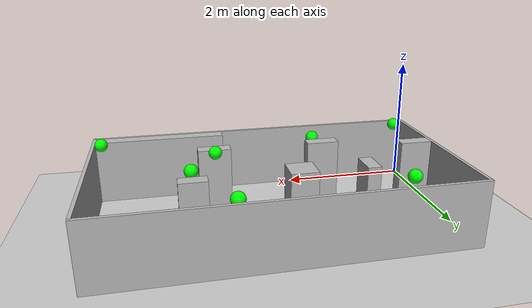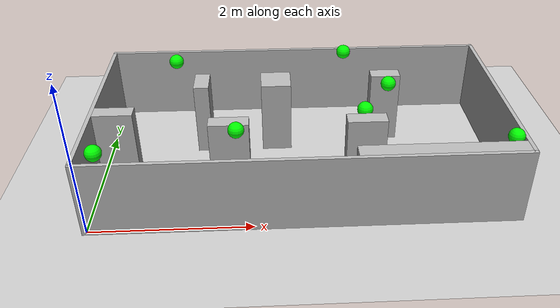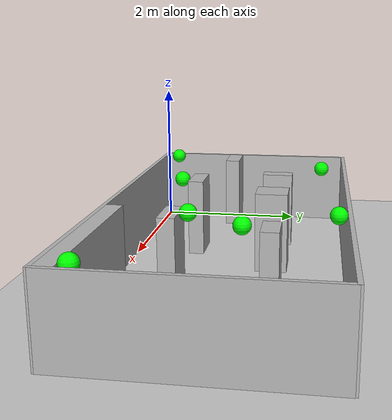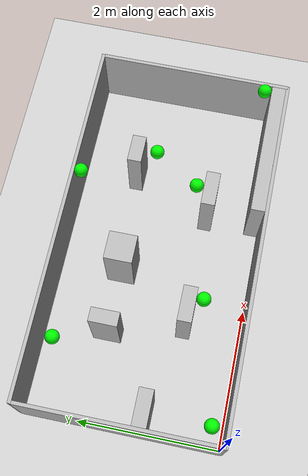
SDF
<sdf version="1.6">
  <world name="ttk4192_world">
    <include>
      <uri>model://sun</uri>
    </include>
    <include>
      <uri>model://ground_plane</uri>
    </include>
    <model name="wall_bottom">
      <pose>2.605 -0.025 0.5 0 0 0</pose>
      <static>true</static>
      <link name="link">
        <collision name="collision">
          <geometry>
            <box>
              <size>5.3 0.05 1</size>
            </box>
          </geometry>
        </collision>
        <visual name="visual">
          <geometry>
            <box>
              <size>5.3 0.05 1</size>
            </box>
          </geometry>
        </visual>
      </link>
    </model>
    <model name="wall_top">
      <pose>2.605 2.775 0.5 0 0 0</pose>
      <static>true</static>
      <link name="link">
        <collision name="collision">
          <geometry>
            <box>
              <size>5.3 0.05 1</size>
            </box>
          </geometry>
        </collision>
        <visual name="visual">
          <geometry>
            <box>
              <size>5.3 0.05 1</size>
            </box>
          </geometry>
        </visual>
      </link>
    </model>
    <model name="wall_left">
      <pose>-0.025 1.375 0.5 0 0 0</pose>
      <static>true</static>
      <link name="link">
        <collision name="collision">
          <geometry>
            <box>
              <size>0.05 2.8 1</size>
            </box>
          </geometry>
        </collision>
        <visual name="visual">
          <geometry>
            <box>
              <size>0.05 2.8 1</size>
            </box>
          </geometry>
        </visual>
      </link>
    </model>
    <model name="wall_right">
      <pose>5.235 1.375 0.5 0 0 0</pose>
      <static>true</static>
      <link name="link">
        <collision name="collision">
          <geometry>
            <box>
              <size>0.05 2.8 1</size>
            </box>
          </geometry>
        </collision>
        <visual name="visual">
          <geometry>
            <box>
              <size>0.05 2.8 1</size>
            </box>
          </geometry>
        </visual>
      </link>
    </model>
    <model name="box_wall_right">
      <pose>4.21 0.1 0.5 0 0 0</pose>
      <static>true</static>
      <link name="link">
        <collision name="collision">
          <geometry>
            <box>
              <size>2.0 0.2 1</size>
            </box>
          </geometry>
        </collision>
        <visual name="visual">
          <geometry>
            <box>
              <size>2.0 0.2 1</size>
            </box>
          </geometry>
        </visual>
      </link>
    </model>
    <model name="box_wall_left">
      <pose>0.25 1.1 0.5 0 0 0</pose>
      <static>true</static>
      <link name="link">
        <collision name="collision">
          <geometry>
            <box>
              <size>0.5 0.2 1</size>
            </box>
          </geometry>
        </collision>
        <visual name="visual">
          <geometry>
            <box>
              <size>0.5 0.2 1</size>
            </box>
          </geometry>
        </visual>
      </link>
    </model>
    <model name="box_wp1">
      <pose>1.7 0.8 0.5 0 0 0</pose>
      <static>true</static>
      <link name="link">
        <collision name="collision">
          <geometry>
            <box>
              <size>0.5 0.2 1</size>
            </box>
          </geometry>
        </collision>
        <visual name="visual">
          <geometry>
            <box>
              <size>0.5 0.2 1</size>
            </box>
          </geometry>
        </visual>
      </link>
    </model>
    <model name="box_wp2">
      <pose>3.41 0.8 0.5 0 0 0</pose>
      <static>true</static>
      <link name="link">
        <collision name="collision">
          <geometry>
            <box>
              <size>0.5 0.2 1</size>
            </box>
          </geometry>
        </collision>
        <visual name="visual">
          <geometry>
            <box>
              <size>0.5 0.2 1</size>
            </box>
          </geometry>
        </visual>
      </link>
    </model>
    <model name="random_1">
      <pose>1.3 1.85 0.5 0 0 0</pose>
      <static>true</static>
      <link name="link">
        <collision name="collision">
          <geometry>
            <box>
              <size>0.2 0.4 1</size>
            </box>
          </geometry>
        </collision>
        <visual name="visual">
          <geometry>
            <box>
              <size>0.2 0.4 1</size>
            </box>
          </geometry>
        </visual>
      </link>
    </model>
    <model name="random_2">
      <pose>2.3 1.85 0.5 0 0 0</pose>
      <static>true</static>
      <link name="link">
        <collision name="collision">
          <geometry>
            <box>
              <size>0.4 0.4 1</size>
            </box>
          </geometry>
        </collision>
        <visual name="visual">
          <geometry>
            <box>
              <size>0.4 0.4 1</size>
            </box>
          </geometry>
        </visual>
      </link>
    </model>
    <model name="box_wp6">
      <pose>3.81 1.95 0.5 0 0 0</pose>
      <static>true</static>
      <link name="link">
        <collision name="collision">
          <geometry>
            <box>
              <size>0.4 0.2 1</size>
            </box>
          </geometry>
        </collision>
        <visual name="visual">
          <geometry>
            <box>
              <size>0.4 0.2 1</size>
            </box>
          </geometry>
        </visual>
      </link>
    </model>
    <model name="wp0_marker">
      <pose>0.2 0.2 1.0 0 0 0</pose>
      <static>true</static>
      <link name="link">
        <visual name="visual">
          <geometry>
            <sphere>
              <radius>0.1</radius>
            </sphere>
          </geometry>
          <material>
            <ambient>0 1 0 1</ambient>
            <diffuse>0 1 0 1</diffuse>
          </material>
        </visual>
      </link>
    </model>
    <model name="wp1_marker">
      <pose>1.8 0.6 1.0 0 0 0</pose>
      <static>true</static>
      <link name="link">
        <visual name="visual">
          <geometry>
            <sphere>
              <radius>0.1</radius>
            </sphere>
          </geometry>
          <material>
            <ambient>0 1 0 1</ambient>
            <diffuse>0 1 0 1</diffuse>
          </material>
        </visual>
      </link>
    </model>
    <model name="wp2_marker">
      <pose>3.41 1.0 1.0 0 0 0</pose>
      <static>true</static>
      <link name="link">
        <visual name="visual">
          <geometry>
            <sphere>
              <radius>0.1</radius>
            </sphere>
          </geometry>
          <material>
            <ambient>0 1 0 1</ambient>
            <diffuse>0 1 0 1</diffuse>
          </material>
        </visual>
      </link>
    </model>
    <model name="wp3_marker">
      <pose>3.31 2.65 1.0 0 0 0</pose>
      <static>true</static>
      <link name="link">
        <visual name="visual">
          <geometry>
            <sphere>
              <radius>0.1</radius>
            </sphere>
          </geometry>
          <material>
            <ambient>0 1 0 1</ambient>
            <diffuse>0 1 0 1</diffuse>
          </material>
        </visual>
      </link>
    </model>
    <model name="wp4_marker">
      <pose>5.11 0.3 1.0 0 0 0</pose>
      <static>true</static>
      <link name="link">
        <visual name="visual">
          <geometry>
            <sphere>
              <radius>0.1</radius>
            </sphere>
          </geometry>
          <material>
            <ambient>0 1 0 1</ambient>
            <diffuse>0 1 0 1</diffuse>
          </material>
        </visual>
      </link>
    </model>
    <model name="wp5_marker">
      <pose>0.9 2.45 1.0 0 0 0</pose>
      <static>true</static>
      <link name="link">
        <visual name="visual">
          <geometry>
            <sphere>
              <radius>0.1</radius>
            </sphere>
          </geometry>
          <material>
            <ambient>0 1 0 1</ambient>
            <diffuse>0 1 0 1</diffuse>
          </material>
        </visual>
      </link>
    </model>
    <model name="wp6_marker">
      <pose>3.81 1.65 1.0 0 0 0</pose>
      <static>true</static>
      <link name="link">
        <visual name="visual">
          <geometry>
            <sphere>
              <radius>0.1</radius>
            </sphere>
          </geometry>
          <material>
            <ambient>0 1 0 1</ambient>
            <diffuse>0 1 0 1</diffuse>
          </material>
        </visual>
      </link>
    </model>
  </world>
</sdf>
